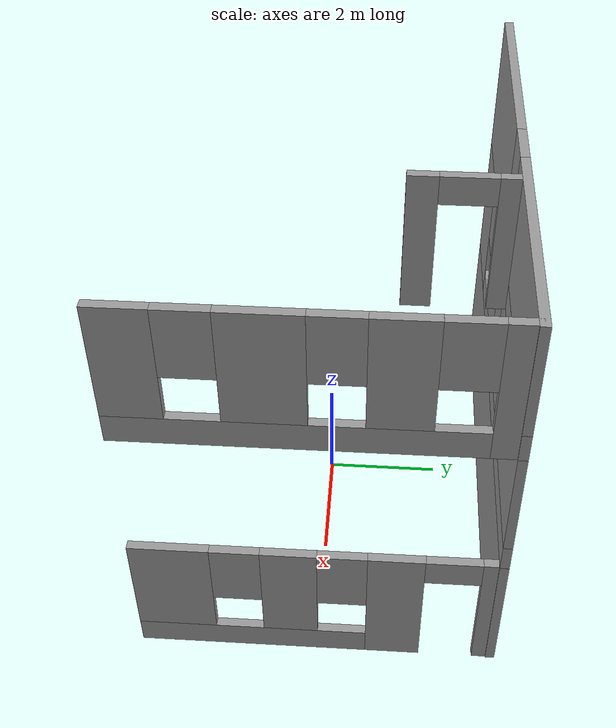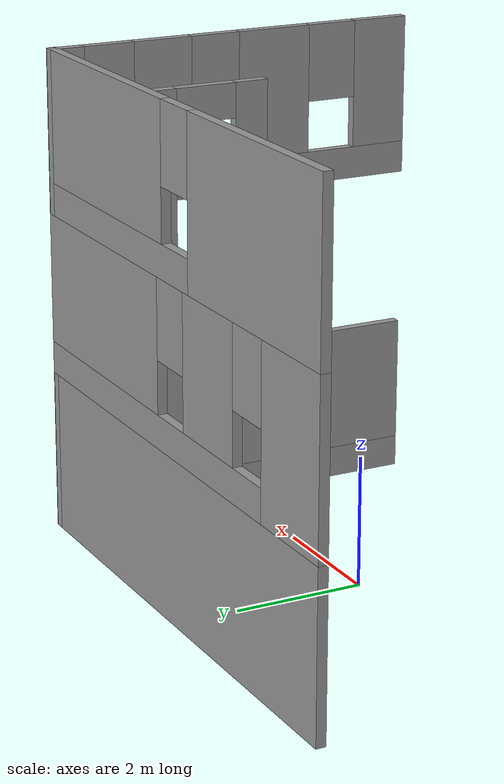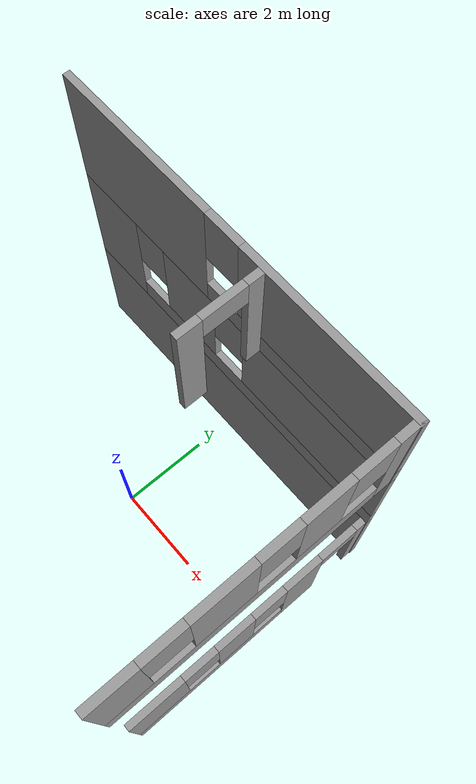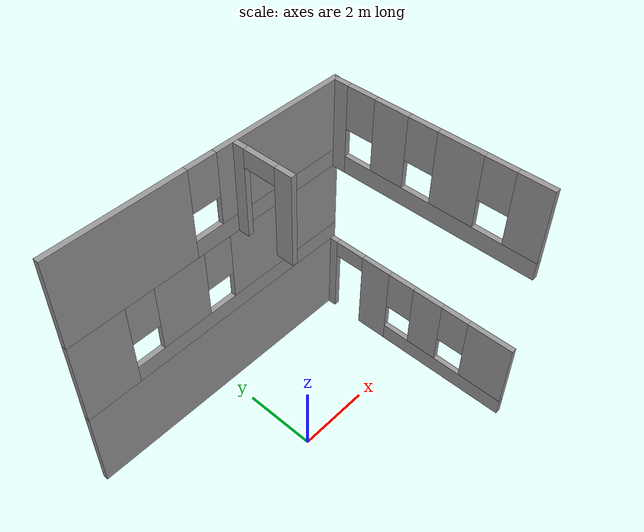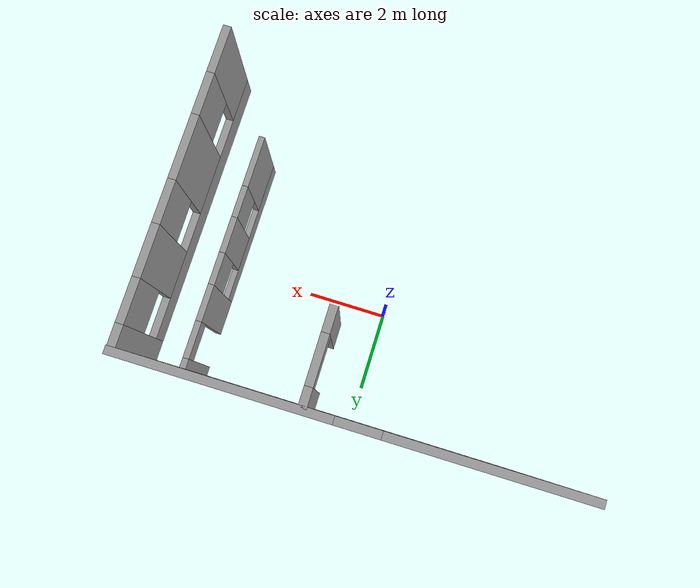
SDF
<sdf version="1.7">
 <model name="simple_building">
  <link name="Wall_18">
   <pose>0.008172 2.93646 2.5 0 -0 0</pose>
   <visual name="Wall_18_Visual_0">
    <pose>-3.37982 0 1.25 0 -0 0</pose>
    <geometry><box><size>1.51412 0.15 2.5</size></box></geometry>
    <material>
     <script><uri>file://media/materials/scripts/gazebo.material</uri><name>Gazebo/Grey</name></script>
     <ambient>1 1 1 1</ambient>
     <shader type="pixel"/>
    </material>
   </visual>
   <visual name="Wall_18_Visual_1">
    <pose>0.757062 0 0.25 0 -0 0</pose>
    <geometry><box><size>6.75963 0.15 0.5</size></box></geometry>
    <material>
     <script><uri>file://media/materials/scripts/gazebo.material</uri><name>Gazebo/Grey</name></script>
     <ambient>1 1 1 1</ambient>
     <shader type="pixel"/>
    </material>
   </visual>
   <visual name="Wall_18_Visual_2">
    <pose>-1.0897 0 1.5 0 -0 0</pose>
    <geometry><box><size>1.4661 0.15 2</size></box></geometry>
    <material>
     <script><uri>file://media/materials/scripts/gazebo.material</uri><name>Gazebo/Grey</name></script>
     <ambient>1 1 1 1</ambient>
     <shader type="pixel"/>
    </material>
   </visual>
   <visual name="Wall_18_Visual_3">
    <pose>2.29011 0 1.5 0 -0 0</pose>
    <geometry><box><size>3.69353 0.15 2</size></box></geometry>
    <material>
     <script><uri>file://media/materials/scripts/gazebo.material</uri><name>Gazebo/Grey</name></script>
     <ambient>1 1 1 1</ambient>
     <shader type="pixel"/>
    </material>
   </visual>
   <visual name="Wall_18_Visual_4">
    <pose>-2.22275 0 1.9 0 -0 0</pose>
    <geometry><box><size>0.8 0.15 1.2</size></box></geometry>
    <material>
     <script><uri>file://media/materials/scripts/gazebo.material</uri><name>Gazebo/Grey</name></script>
     <ambient>1 1 1 1</ambient>
     <shader type="pixel"/>
    </material>
   </visual>
   <visual name="Wall_18_Visual_5">
    <pose>0.043349 0 1.9 0 -0 0</pose>
    <geometry><box><size>0.8 0.15 1.2</size></box></geometry>
    <material>
     <script><uri>file://media/materials/scripts/gazebo.material</uri><name>Gazebo/Grey</name></script>
     <ambient>1 1 1 1</ambient>
     <shader type="pixel"/>
    </material>
   </visual>
   <collision name="Wall_18_Collision_0">
    <pose>-3.37982 0 1.25 0 -0 0</pose>
    <geometry><box><size>1.51412 0.15 2.5</size></box></geometry>
    <surface>
     <friction>
      <ode><mu>1</mu><mu2>1</mu2><fdir1>0 0 0</fdir1><slip1>0</slip1><slip2>0</slip2></ode>
      <torsional>
       <coefficient>1</coefficient>
       <patch_radius>0</patch_radius>
       <surface_radius>0</surface_radius>
       <use_patch_radius>1</use_patch_radius>
       <ode><slip>0</slip></ode>
      </torsional>
     </friction>
     <bounce><restitution_coefficient>0</restitution_coefficient><threshold>1e+06</threshold></bounce>
     <contact>
      <collide_without_contact>0</collide_without_contact>
      <collide_without_contact_bitmask>1</collide_without_contact_bitmask>
      <collide_bitmask>1</collide_bitmask>
      <ode>
       <soft_cfm>0</soft_cfm>
       <soft_erp>0.2</soft_erp>
       <kp>1e+13</kp>
       <kd>1</kd>
       <max_vel>0.01</max_vel>
       <min_depth>0</min_depth>
      </ode>
      <bullet>
       <split_impulse>1</split_impulse>
       <split_impulse_penetration_threshold>-0.01</split_impulse_penetration_threshold>
       <soft_cfm>0</soft_cfm>
       <soft_erp>0.2</soft_erp>
       <kp>1e+13</kp>
       <kd>1</kd>
      </bullet>
     </contact>
    </surface>
   </collision>
   <collision name="Wall_18_Collision_2">
    <pose>-1.0897 0 1.5 0 -0 0</pose>
    <geometry><box><size>1.4661 0.15 2</size></box></geometry>
    <surface>
     <friction>
      <ode><mu>1</mu><mu2>1</mu2><fdir1>0 0 0</fdir1><slip1>0</slip1><slip2>0</slip2></ode>
      <torsional>
       <coefficient>1</coefficient>
       <patch_radius>0</patch_radius>
       <surface_radius>0</surface_radius>
       <use_patch_radius>1</use_patch_radius>
       <ode><slip>0</slip></ode>
      </torsional>
     </friction>
     <bounce><restitution_coefficient>0</restitution_coefficient><threshold>1e+06</threshold></bounce>
     <contact>
      <collide_without_contact>0</collide_without_contact>
      <collide_without_contact_bitmask>1</collide_without_contact_bitmask>
      <collide_bitmask>1</collide_bitmask>
      <ode>
       <soft_cfm>0</soft_cfm>
       <soft_erp>0.2</soft_erp>
       <kp>1e+13</kp>
       <kd>1</kd>
       <max_vel>0.01</max_vel>
       <min_depth>0</min_depth>
      </ode>
      <bullet>
       <split_impulse>1</split_impulse>
       <split_impulse_penetration_threshold>-0.01</split_impulse_penetration_threshold>
       <soft_cfm>0</soft_cfm>
       <soft_erp>0.2</soft_erp>
       <kp>1e+13</kp>
       <kd>1</kd>
      </bullet>
     </contact>
    </surface>
   </collision>
   <collision name="Wall_18_Collision_1">
    <pose>0.757062 0 0.25 0 -0 0</pose>
    <geometry><box><size>6.75963 0.15 0.5</size></box></geometry>
    <surface>
     <friction>
      <ode><mu>1</mu><mu2>1</mu2><fdir1>0 0 0</fdir1><slip1>0</slip1><slip2>0</slip2></ode>
      <torsional>
       <coefficient>1</coefficient>
       <patch_radius>0</patch_radius>
       <surface_radius>0</surface_radius>
       <use_patch_radius>1</use_patch_radius>
       <ode><slip>0</slip></ode>
      </torsional>
     </friction>
     <bounce><restitution_coefficient>0</restitution_coefficient><threshold>1e+06</threshold></bounce>
     <contact>
      <collide_without_contact>0</collide_without_contact>
      <collide_without_contact_bitmask>1</collide_without_contact_bitmask>
      <collide_bitmask>1</collide_bitmask>
      <ode>
       <soft_cfm>0</soft_cfm>
       <soft_erp>0.2</soft_erp>
       <kp>1e+13</kp>
       <kd>1</kd>
       <max_vel>0.01</max_vel>
       <min_depth>0</min_depth>
      </ode>
      <bullet>
       <split_impulse>1</split_impulse>
       <split_impulse_penetration_threshold>-0.01</split_impulse_penetration_threshold>
       <soft_cfm>0</soft_cfm>
       <soft_erp>0.2</soft_erp>
       <kp>1e+13</kp>
       <kd>1</kd>
      </bullet>
     </contact>
    </surface>
   </collision>
   <collision name="Wall_18_Collision_3">
    <pose>2.29011 0 1.5 0 -0 0</pose>
    <geometry><box><size>3.69353 0.15 2</size></box></geometry>
    <surface>
     <friction>
      <ode><mu>1</mu><mu2>1</mu2><fdir1>0 0 0</fdir1><slip1>0</slip1><slip2>0</slip2></ode>
      <torsional>
       <coefficient>1</coefficient>
       <patch_radius>0</patch_radius>
       <surface_radius>0</surface_radius>
       <use_patch_radius>1</use_patch_radius>
       <ode><slip>0</slip></ode>
      </torsional>
     </friction>
     <bounce><restitution_coefficient>0</restitution_coefficient><threshold>1e+06</threshold></bounce>
     <contact>
      <collide_without_contact>0</collide_without_contact>
      <collide_without_contact_bitmask>1</collide_without_contact_bitmask>
      <collide_bitmask>1</collide_bitmask>
      <ode>
       <soft_cfm>0</soft_cfm>
       <soft_erp>0.2</soft_erp>
       <kp>1e+13</kp>
       <kd>1</kd>
       <max_vel>0.01</max_vel>
       <min_depth>0</min_depth>
      </ode>
      <bullet>
       <split_impulse>1</split_impulse>
       <split_impulse_penetration_threshold>-0.01</split_impulse_penetration_threshold>
       <soft_cfm>0</soft_cfm>
       <soft_erp>0.2</soft_erp>
       <kp>1e+13</kp>
       <kd>1</kd>
      </bullet>
     </contact>
    </surface>
   </collision>
   <collision name="Wall_18_Collision_4">
    <pose>-2.22275 0 1.9 0 -0 0</pose>
    <geometry><box><size>0.8 0.15 1.2</size></box></geometry>
    <surface>
     <friction>
      <ode><mu>1</mu><mu2>1</mu2><fdir1>0 0 0</fdir1><slip1>0</slip1><slip2>0</slip2></ode>
      <torsional>
       <coefficient>1</coefficient>
       <patch_radius>0</patch_radius>
       <surface_radius>0</surface_radius>
       <use_patch_radius>1</use_patch_radius>
       <ode><slip>0</slip></ode>
      </torsional>
     </friction>
     <bounce><restitution_coefficient>0</restitution_coefficient><threshold>1e+06</threshold></bounce>
     <contact>
      <collide_without_contact>0</collide_without_contact>
      <collide_without_contact_bitmask>1</collide_without_contact_bitmask>
      <collide_bitmask>1</collide_bitmask>
      <ode>
       <soft_cfm>0</soft_cfm>
       <soft_erp>0.2</soft_erp>
       <kp>1e+13</kp>
       <kd>1</kd>
       <max_vel>0.01</max_vel>
       <min_depth>0</min_depth>
      </ode>
      <bullet>
       <split_impulse>1</split_impulse>
       <split_impulse_penetration_threshold>-0.01</split_impulse_penetration_threshold>
       <soft_cfm>0</soft_cfm>
       <soft_erp>0.2</soft_erp>
       <kp>1e+13</kp>
       <kd>1</kd>
      </bullet>
     </contact>
    </surface>
   </collision>
   <collision name="Wall_18_Collision_5">
    <pose>0.043349 0 1.9 0 -0 0</pose>
    <geometry><box><size>0.8 0.15 1.2</size></box></geometry>
    <surface>
     <friction>
      <ode><mu>1</mu><mu2>1</mu2><fdir1>0 0 0</fdir1><slip1>0</slip1><slip2>0</slip2></ode>
      <torsional>
       <coefficient>1</coefficient>
       <patch_radius>0</patch_radius>
       <surface_radius>0</surface_radius>
       <use_patch_radius>1</use_patch_radius>
       <ode><slip>0</slip></ode>
      </torsional>
     </friction>
     <bounce><restitution_coefficient>0</restitution_coefficient><threshold>1e+06</threshold></bounce>
     <contact>
      <collide_without_contact>0</collide_without_contact>
      <collide_without_contact_bitmask>1</collide_without_contact_bitmask>
      <collide_bitmask>1</collide_bitmask>
      <ode>
       <soft_cfm>0</soft_cfm>
       <soft_erp>0.2</soft_erp>
       <kp>1e+13</kp>
       <kd>1</kd>
       <max_vel>0.01</max_vel>
       <min_depth>0</min_depth>
      </ode>
      <bullet>
       <split_impulse>1</split_impulse>
       <split_impulse_penetration_threshold>-0.01</split_impulse_penetration_threshold>
       <soft_cfm>0</soft_cfm>
       <soft_erp>0.2</soft_erp>
       <kp>1e+13</kp>
       <kd>1</kd>
      </bullet>
     </contact>
    </surface>
   </collision>
  </link>
  <link name="Wall_2">
   <pose>0.008172 2.93646 0 0 -0 0</pose>
   <visual name="Wall_2_Visual">
    <pose>0 0 1.25 0 -0 0</pose>
    <geometry><box><size>8.27376 0.15 2.5</size></box></geometry>
    <material>
     <script><uri>file://media/materials/scripts/gazebo.material</uri><name>Gazebo/Grey</name></script>
     <ambient>1 1 1 1</ambient>
     <shader type="pixel"/>
    </material>
   </visual>
   <collision name="Wall_2_Collision">
    <pose>0 0 1.25 0 -0 0</pose>
    <geometry><box><size>8.27376 0.15 2.5</size></box></geometry>
    <surface>
     <friction>
      <ode><mu>1</mu><mu2>1</mu2><fdir1>0 0 0</fdir1><slip1>0</slip1><slip2>0</slip2></ode>
      <torsional>
       <coefficient>1</coefficient>
       <patch_radius>0</patch_radius>
       <surface_radius>0</surface_radius>
       <use_patch_radius>1</use_patch_radius>
       <ode><slip>0</slip></ode>
      </torsional>
     </friction>
     <bounce><restitution_coefficient>0</restitution_coefficient><threshold>1e+06</threshold></bounce>
     <contact>
      <collide_without_contact>0</collide_without_contact>
      <collide_without_contact_bitmask>1</collide_without_contact_bitmask>
      <collide_bitmask>1</collide_bitmask>
      <ode>
       <soft_cfm>0</soft_cfm>
       <soft_erp>0.2</soft_erp>
       <kp>1e+13</kp>
       <kd>1</kd>
       <max_vel>0.01</max_vel>
       <min_depth>0</min_depth>
      </ode>
      <bullet>
       <split_impulse>1</split_impulse>
       <split_impulse_penetration_threshold>-0.01</split_impulse_penetration_threshold>
       <soft_cfm>0</soft_cfm>
       <soft_erp>0.2</soft_erp>
       <kp>1e+13</kp>
       <kd>1</kd>
      </bullet>
     </contact>
    </surface>
   </collision>
  </link>
  <link name="Wall_23">
   <pose>0.008172 2.93646 5 0 -0 0</pose>
   <visual name="Wall_23_Visual_0">
    <pose>-2.33041 0 1.25 0 -0 0</pose>
    <geometry><box><size>3.61293 0.15 2.5</size></box></geometry>
    <material>
     <script><uri>file://media/materials/scripts/gazebo.material</uri><name>Gazebo/Grey</name></script>
     <ambient>1 1 1 1</ambient>
     <shader type="pixel"/>
    </material>
   </visual>
   <visual name="Wall_23_Visual_1">
    <pose>1.80647 0 0.25 0 -0 0</pose>
    <geometry><box><size>4.66083 0.15 0.5</size></box></geometry>
    <material>
     <script><uri>file://media/materials/scripts/gazebo.material</uri><name>Gazebo/Grey</name></script>
     <ambient>1 1 1 1</ambient>
     <shader type="pixel"/>
    </material>
   </visual>
   <visual name="Wall_23_Visual_2">
    <pose>2.20647 0 1.5 0 -0 0</pose>
    <geometry><box><size>3.86083 0.15 2</size></box></geometry>
    <material>
     <script><uri>file://media/materials/scripts/gazebo.material</uri><name>Gazebo/Grey</name></script>
     <ambient>1 1 1 1</ambient>
     <shader type="pixel"/>
    </material>
   </visual>
   <visual name="Wall_23_Visual_3">
    <pose>-0.123947 0 1.9 0 -0 0</pose>
    <geometry><box><size>0.8 0.15 1.2</size></box></geometry>
    <material>
     <script><uri>file://media/materials/scripts/gazebo.material</uri><name>Gazebo/Grey</name></script>
     <ambient>1 1 1 1</ambient>
     <shader type="pixel"/>
    </material>
   </visual>
   <collision name="Wall_23_Collision_0">
    <pose>-2.33041 0 1.25 0 -0 0</pose>
    <geometry><box><size>3.61293 0.15 2.5</size></box></geometry>
    <surface>
     <friction>
      <ode><mu>1</mu><mu2>1</mu2><fdir1>0 0 0</fdir1><slip1>0</slip1><slip2>0</slip2></ode>
      <torsional>
       <coefficient>1</coefficient>
       <patch_radius>0</patch_radius>
       <surface_radius>0</surface_radius>
       <use_patch_radius>1</use_patch_radius>
       <ode><slip>0</slip></ode>
      </torsional>
     </friction>
     <bounce><restitution_coefficient>0</restitution_coefficient><threshold>1e+06</threshold></bounce>
     <contact>
      <collide_without_contact>0</collide_without_contact>
      <collide_without_contact_bitmask>1</collide_without_contact_bitmask>
      <collide_bitmask>1</collide_bitmask>
      <ode>
       <soft_cfm>0</soft_cfm>
       <soft_erp>0.2</soft_erp>
       <kp>1e+13</kp>
       <kd>1</kd>
       <max_vel>0.01</max_vel>
       <min_depth>0</min_depth>
      </ode>
      <bullet>
       <split_impulse>1</split_impulse>
       <split_impulse_penetration_threshold>-0.01</split_impulse_penetration_threshold>
       <soft_cfm>0</soft_cfm>
       <soft_erp>0.2</soft_erp>
       <kp>1e+13</kp>
       <kd>1</kd>
      </bullet>
     </contact>
    </surface>
   </collision>
   <collision name="Wall_23_Collision_1">
    <pose>1.80647 0 0.25 0 -0 0</pose>
    <geometry><box><size>4.66083 0.15 0.5</size></box></geometry>
    <surface>
     <friction>
      <ode><mu>1</mu><mu2>1</mu2><fdir1>0 0 0</fdir1><slip1>0</slip1><slip2>0</slip2></ode>
      <torsional>
       <coefficient>1</coefficient>
       <patch_radius>0</patch_radius>
       <surface_radius>0</surface_radius>
       <use_patch_radius>1</use_patch_radius>
       <ode><slip>0</slip></ode>
      </torsional>
     </friction>
     <bounce><restitution_coefficient>0</restitution_coefficient><threshold>1e+06</threshold></bounce>
     <contact>
      <collide_without_contact>0</collide_without_contact>
      <collide_without_contact_bitmask>1</collide_without_contact_bitmask>
      <collide_bitmask>1</collide_bitmask>
      <ode>
       <soft_cfm>0</soft_cfm>
       <soft_erp>0.2</soft_erp>
       <kp>1e+13</kp>
       <kd>1</kd>
       <max_vel>0.01</max_vel>
       <min_depth>0</min_depth>
      </ode>
      <bullet>
       <split_impulse>1</split_impulse>
       <split_impulse_penetration_threshold>-0.01</split_impulse_penetration_threshold>
       <soft_cfm>0</soft_cfm>
       <soft_erp>0.2</soft_erp>
       <kp>1e+13</kp>
       <kd>1</kd>
      </bullet>
     </contact>
    </surface>
   </collision>
   <collision name="Wall_23_Collision_2">
    <pose>2.20647 0 1.5 0 -0 0</pose>
    <geometry><box><size>3.86083 0.15 2</size></box></geometry>
    <surface>
     <friction>
      <ode><mu>1</mu><mu2>1</mu2><fdir1>0 0 0</fdir1><slip1>0</slip1><slip2>0</slip2></ode>
      <torsional>
       <coefficient>1</coefficient>
       <patch_radius>0</patch_radius>
       <surface_radius>0</surface_radius>
       <use_patch_radius>1</use_patch_radius>
       <ode><slip>0</slip></ode>
      </torsional>
     </friction>
     <bounce><restitution_coefficient>0</restitution_coefficient><threshold>1e+06</threshold></bounce>
     <contact>
      <collide_without_contact>0</collide_without_contact>
      <collide_without_contact_bitmask>1</collide_without_contact_bitmask>
      <collide_bitmask>1</collide_bitmask>
      <ode>
       <soft_cfm>0</soft_cfm>
       <soft_erp>0.2</soft_erp>
       <kp>1e+13</kp>
       <kd>1</kd>
       <max_vel>0.01</max_vel>
       <min_depth>0</min_depth>
      </ode>
      <bullet>
       <split_impulse>1</split_impulse>
       <split_impulse_penetration_threshold>-0.01</split_impulse_penetration_threshold>
       <soft_cfm>0</soft_cfm>
       <soft_erp>0.2</soft_erp>
       <kp>1e+13</kp>
       <kd>1</kd>
      </bullet>
     </contact>
    </surface>
   </collision>
   <collision name="Wall_23_Collision_3">
    <pose>-0.123947 0 1.9 0 -0 0</pose>
    <geometry><box><size>0.8 0.15 1.2</size></box></geometry>
    <surface>
     <friction>
      <ode><mu>1</mu><mu2>1</mu2><fdir1>0 0 0</fdir1><slip1>0</slip1><slip2>0</slip2></ode>
      <torsional>
       <coefficient>1</coefficient>
       <patch_radius>0</patch_radius>
       <surface_radius>0</surface_radius>
       <use_patch_radius>1</use_patch_radius>
       <ode><slip>0</slip></ode>
      </torsional>
     </friction>
     <bounce><restitution_coefficient>0</restitution_coefficient><threshold>1e+06</threshold></bounce>
     <contact>
      <collide_without_contact>0</collide_without_contact>
      <collide_without_contact_bitmask>1</collide_without_contact_bitmask>
      <collide_bitmask>1</collide_bitmask>
      <ode>
       <soft_cfm>0</soft_cfm>
       <soft_erp>0.2</soft_erp>
       <kp>1e+13</kp>
       <kd>1</kd>
       <max_vel>0.01</max_vel>
       <min_depth>0</min_depth>
      </ode>
      <bullet>
       <split_impulse>1</split_impulse>
       <split_impulse_penetration_threshold>-0.01</split_impulse_penetration_threshold>
       <soft_cfm>0</soft_cfm>
       <soft_erp>0.2</soft_erp>
       <kp>1e+13</kp>
       <kd>1</kd>
      </bullet>
     </contact>
    </surface>
   </collision>
  </link>
  <link name="Wall_24">
   <pose>4.05484 0.011464 5 0 0 -1.5708</pose>
   <visual name="Wall_24_Visual_0">
    <pose>-2.73149 0 1.25 0 -0 0</pose>
    <geometry><box><size>0.537024 0.15 2.5</size></box></geometry>
    <material>
     <script><uri>file://media/materials/scripts/gazebo.material</uri><name>Gazebo/Grey</name></script>
     <ambient>1 1 1 1</ambient>
     <shader type="pixel"/>
    </material>
   </visual>
   <visual name="Wall_24_Visual_1">
    <pose>0.268512 0 0.25 0 -0 0</pose>
    <geometry><box><size>5.46298 0.15 0.5</size></box></geometry>
    <material>
     <script><uri>file://media/materials/scripts/gazebo.material</uri><name>Gazebo/Grey</name></script>
     <ambient>1 1 1 1</ambient>
     <shader type="pixel"/>
    </material>
   </visual>
   <visual name="Wall_24_Visual_2">
    <pose>-1.18847 0 1.5 0 -0 0</pose>
    <geometry><box><size>0.949006 0.15 2</size></box></geometry>
    <material>
     <script><uri>file://media/materials/scripts/gazebo.material</uri><name>Gazebo/Grey</name></script>
     <ambient>1 1 1 1</ambient>
     <shader type="pixel"/>
    </material>
   </visual>
   <visual name="Wall_24_Visual_3">
    <pose>0.689808 0 1.5 0 -0 0</pose>
    <geometry><box><size>1.20755 0.15 2</size></box></geometry>
    <material>
     <script><uri>file://media/materials/scripts/gazebo.material</uri><name>Gazebo/Grey</name></script>
     <ambient>1 1 1 1</ambient>
     <shader type="pixel"/>
    </material>
   </visual>
   <visual name="Wall_24_Visual_4">
    <pose>2.54679 0 1.5 0 -0 0</pose>
    <geometry><box><size>0.906414 0.15 2</size></box></geometry>
    <material>
     <script><uri>file://media/materials/scripts/gazebo.material</uri><name>Gazebo/Grey</name></script>
     <ambient>1 1 1 1</ambient>
     <shader type="pixel"/>
    </material>
   </visual>
   <visual name="Wall_24_Visual_5">
    <pose>-2.06298 0 1.9 0 -0 0</pose>
    <geometry><box><size>0.8 0.15 1.2</size></box></geometry>
    <material>
     <script><uri>file://media/materials/scripts/gazebo.material</uri><name>Gazebo/Grey</name></script>
     <ambient>1 1 1 1</ambient>
     <shader type="pixel"/>
    </material>
   </visual>
   <visual name="Wall_24_Visual_6">
    <pose>-0.313969 0 1.9 0 -0 0</pose>
    <geometry><box><size>0.8 0.15 1.2</size></box></geometry>
    <material>
     <script><uri>file://media/materials/scripts/gazebo.material</uri><name>Gazebo/Grey</name></script>
     <ambient>1 1 1 1</ambient>
     <shader type="pixel"/>
    </material>
   </visual>
   <visual name="Wall_24_Visual_7">
    <pose>1.69359 0 1.9 0 -0 0</pose>
    <geometry><box><size>0.8 0.15 1.2</size></box></geometry>
    <material>
     <script><uri>file://media/materials/scripts/gazebo.material</uri><name>Gazebo/Grey</name></script>
     <ambient>1 1 1 1</ambient>
     <shader type="pixel"/>
    </material>
   </visual>
   <collision name="Wall_24_Collision_0">
    <pose>-2.73149 0 1.25 0 -0 0</pose>
    <geometry><box><size>0.537024 0.15 2.5</size></box></geometry>
    <surface>
     <friction>
      <ode><mu>1</mu><mu2>1</mu2><fdir1>0 0 0</fdir1><slip1>0</slip1><slip2>0</slip2></ode>
      <torsional>
       <coefficient>1</coefficient>
       <patch_radius>0</patch_radius>
       <surface_radius>0</surface_radius>
       <use_patch_radius>1</use_patch_radius>
       <ode><slip>0</slip></ode>
      </torsional>
     </friction>
     <bounce><restitution_coefficient>0</restitution_coefficient><threshold>1e+06</threshold></bounce>
     <contact>
      <collide_without_contact>0</collide_without_contact>
      <collide_without_contact_bitmask>1</collide_without_contact_bitmask>
      <collide_bitmask>1</collide_bitmask>
      <ode>
       <soft_cfm>0</soft_cfm>
       <soft_erp>0.2</soft_erp>
       <kp>1e+13</kp>
       <kd>1</kd>
       <max_vel>0.01</max_vel>
       <min_depth>0</min_depth>
      </ode>
      <bullet>
       <split_impulse>1</split_impulse>
       <split_impulse_penetration_threshold>-0.01</split_impulse_penetration_threshold>
       <soft_cfm>0</soft_cfm>
       <soft_erp>0.2</soft_erp>
       <kp>1e+13</kp>
       <kd>1</kd>
      </bullet>
     </contact>
    </surface>
   </collision>
   <collision name="Wall_24_Collision_1">
    <pose>0.268512 0 0.25 0 -0 0</pose>
    <geometry><box><size>5.46298 0.15 0.5</size></box></geometry>
    <surface>
     <friction>
      <ode><mu>1</mu><mu2>1</mu2><fdir1>0 0 0</fdir1><slip1>0</slip1><slip2>0</slip2></ode>
      <torsional>
       <coefficient>1</coefficient>
       <patch_radius>0</patch_radius>
       <surface_radius>0</surface_radius>
       <use_patch_radius>1</use_patch_radius>
       <ode><slip>0</slip></ode>
      </torsional>
     </friction>
     <bounce><restitution_coefficient>0</restitution_coefficient><threshold>1e+06</threshold></bounce>
     <contact>
      <collide_without_contact>0</collide_without_contact>
      <collide_without_contact_bitmask>1</collide_without_contact_bitmask>
      <collide_bitmask>1</collide_bitmask>
      <ode>
       <soft_cfm>0</soft_cfm>
       <soft_erp>0.2</soft_erp>
       <kp>1e+13</kp>
       <kd>1</kd>
       <max_vel>0.01</max_vel>
       <min_depth>0</min_depth>
      </ode>
      <bullet>
       <split_impulse>1</split_impulse>
       <split_impulse_penetration_threshold>-0.01</split_impulse_penetration_threshold>
       <soft_cfm>0</soft_cfm>
       <soft_erp>0.2</soft_erp>
       <kp>1e+13</kp>
       <kd>1</kd>
      </bullet>
     </contact>
    </surface>
   </collision>
   <collision name="Wall_24_Collision_2">
    <pose>-1.18847 0 1.5 0 -0 0</pose>
    <geometry><box><size>0.949006 0.15 2</size></box></geometry>
    <surface>
     <friction>
      <ode><mu>1</mu><mu2>1</mu2><fdir1>0 0 0</fdir1><slip1>0</slip1><slip2>0</slip2></ode>
      <torsional>
       <coefficient>1</coefficient>
       <patch_radius>0</patch_radius>
       <surface_radius>0</surface_radius>
       <use_patch_radius>1</use_patch_radius>
       <ode><slip>0</slip></ode>
      </torsional>
     </friction>
     <bounce><restitution_coefficient>0</restitution_coefficient><threshold>1e+06</threshold></bounce>
     <contact>
      <collide_without_contact>0</collide_without_contact>
      <collide_without_contact_bitmask>1</collide_without_contact_bitmask>
      <collide_bitmask>1</collide_bitmask>
      <ode>
       <soft_cfm>0</soft_cfm>
       <soft_erp>0.2</soft_erp>
       <kp>1e+13</kp>
       <kd>1</kd>
       <max_vel>0.01</max_vel>
       <min_depth>0</min_depth>
      </ode>
      <bullet>
       <split_impulse>1</split_impulse>
       <split_impulse_penetration_threshold>-0.01</split_impulse_penetration_threshold>
       <soft_cfm>0</soft_cfm>
       <soft_erp>0.2</soft_erp>
       <kp>1e+13</kp>
       <kd>1</kd>
      </bullet>
     </contact>
    </surface>
   </collision>
   <collision name="Wall_24_Collision_3">
    <pose>0.689808 0 1.5 0 -0 0</pose>
    <geometry><box><size>1.20755 0.15 2</size></box></geometry>
    <surface>
     <friction>
      <ode><mu>1</mu><mu2>1</mu2><fdir1>0 0 0</fdir1><slip1>0</slip1><slip2>0</slip2></ode>
      <torsional>
       <coefficient>1</coefficient>
       <patch_radius>0</patch_radius>
       <surface_radius>0</surface_radius>
       <use_patch_radius>1</use_patch_radius>
       <ode><slip>0</slip></ode>
      </torsional>
     </friction>
     <bounce><restitution_coefficient>0</restitution_coefficient><threshold>1e+06</threshold></bounce>
     <contact>
      <collide_without_contact>0</collide_without_contact>
      <collide_without_contact_bitmask>1</collide_without_contact_bitmask>
      <collide_bitmask>1</collide_bitmask>
      <ode>
       <soft_cfm>0</soft_cfm>
       <soft_erp>0.2</soft_erp>
       <kp>1e+13</kp>
       <kd>1</kd>
       <max_vel>0.01</max_vel>
       <min_depth>0</min_depth>
      </ode>
      <bullet>
       <split_impulse>1</split_impulse>
       <split_impulse_penetration_threshold>-0.01</split_impulse_penetration_threshold>
       <soft_cfm>0</soft_cfm>
       <soft_erp>0.2</soft_erp>
       <kp>1e+13</kp>
       <kd>1</kd>
      </bullet>
     </contact>
    </surface>
   </collision>
   <collision name="Wall_24_Collision_4">
    <pose>2.54679 0 1.5 0 -0 0</pose>
    <geometry><box><size>0.906414 0.15 2</size></box></geometry>
    <surface>
     <friction>
      <ode><mu>1</mu><mu2>1</mu2><fdir1>0 0 0</fdir1><slip1>0</slip1><slip2>0</slip2></ode>
      <torsional>
       <coefficient>1</coefficient>
       <patch_radius>0</patch_radius>
       <surface_radius>0</surface_radius>
       <use_patch_radius>1</use_patch_radius>
       <ode><slip>0</slip></ode>
      </torsional>
     </friction>
     <bounce><restitution_coefficient>0</restitution_coefficient><threshold>1e+06</threshold></bounce>
     <contact>
      <collide_without_contact>0</collide_without_contact>
      <collide_without_contact_bitmask>1</collide_without_contact_bitmask>
      <collide_bitmask>1</collide_bitmask>
      <ode>
       <soft_cfm>0</soft_cfm>
       <soft_erp>0.2</soft_erp>
       <kp>1e+13</kp>
       <kd>1</kd>
       <max_vel>0.01</max_vel>
       <min_depth>0</min_depth>
      </ode>
      <bullet>
       <split_impulse>1</split_impulse>
       <split_impulse_penetration_threshold>-0.01</split_impulse_penetration_threshold>
       <soft_cfm>0</soft_cfm>
       <soft_erp>0.2</soft_erp>
       <kp>1e+13</kp>
       <kd>1</kd>
      </bullet>
     </contact>
    </surface>
   </collision>
   <collision name="Wall_24_Collision_5">
    <pose>-2.06298 0 1.9 0 -0 0</pose>
    <geometry><box><size>0.8 0.15 1.2</size></box></geometry>
    <surface>
     <friction>
      <ode><mu>1</mu><mu2>1</mu2><fdir1>0 0 0</fdir1><slip1>0</slip1><slip2>0</slip2></ode>
      <torsional>
       <coefficient>1</coefficient>
       <patch_radius>0</patch_radius>
       <surface_radius>0</surface_radius>
       <use_patch_radius>1</use_patch_radius>
       <ode><slip>0</slip></ode>
      </torsional>
     </friction>
     <bounce><restitution_coefficient>0</restitution_coefficient><threshold>1e+06</threshold></bounce>
     <contact>
      <collide_without_contact>0</collide_without_contact>
      <collide_without_contact_bitmask>1</collide_without_contact_bitmask>
      <collide_bitmask>1</collide_bitmask>
      <ode>
       <soft_cfm>0</soft_cfm>
       <soft_erp>0.2</soft_erp>
       <kp>1e+13</kp>
       <kd>1</kd>
       <max_vel>0.01</max_vel>
       <min_depth>0</min_depth>
      </ode>
      <bullet>
       <split_impulse>1</split_impulse>
       <split_impulse_penetration_threshold>-0.01</split_impulse_penetration_threshold>
       <soft_cfm>0</soft_cfm>
       <soft_erp>0.2</soft_erp>
       <kp>1e+13</kp>
       <kd>1</kd>
      </bullet>
     </contact>
    </surface>
   </collision>
   <collision name="Wall_24_Collision_6">
    <pose>-0.313969 0 1.9 0 -0 0</pose>
    <geometry><box><size>0.8 0.15 1.2</size></box></geometry>
    <surface>
     <friction>
      <ode><mu>1</mu><mu2>1</mu2><fdir1>0 0 0</fdir1><slip1>0</slip1><slip2>0</slip2></ode>
      <torsional>
       <coefficient>1</coefficient>
       <patch_radius>0</patch_radius>
       <surface_radius>0</surface_radius>
       <use_patch_radius>1</use_patch_radius>
       <ode><slip>0</slip></ode>
      </torsional>
     </friction>
     <bounce><restitution_coefficient>0</restitution_coefficient><threshold>1e+06</threshold></bounce>
     <contact>
      <collide_without_contact>0</collide_without_contact>
      <collide_without_contact_bitmask>1</collide_without_contact_bitmask>
      <collide_bitmask>1</collide_bitmask>
      <ode>
       <soft_cfm>0</soft_cfm>
       <soft_erp>0.2</soft_erp>
       <kp>1e+13</kp>
       <kd>1</kd>
       <max_vel>0.01</max_vel>
       <min_depth>0</min_depth>
      </ode>
      <bullet>
       <split_impulse>1</split_impulse>
       <split_impulse_penetration_threshold>-0.01</split_impulse_penetration_threshold>
       <soft_cfm>0</soft_cfm>
       <soft_erp>0.2</soft_erp>
       <kp>1e+13</kp>
       <kd>1</kd>
      </bullet>
     </contact>
    </surface>
   </collision>
   <collision name="Wall_24_Collision_7">
    <pose>1.69359 0 1.9 0 -0 0</pose>
    <geometry><box><size>0.8 0.15 1.2</size></box></geometry>
    <surface>
     <friction>
      <ode><mu>1</mu><mu2>1</mu2><fdir1>0 0 0</fdir1><slip1>0</slip1><slip2>0</slip2></ode>
      <torsional>
       <coefficient>1</coefficient>
       <patch_radius>0</patch_radius>
       <surface_radius>0</surface_radius>
       <use_patch_radius>1</use_patch_radius>
       <ode><slip>0</slip></ode>
      </torsional>
     </friction>
     <bounce><restitution_coefficient>0</restitution_coefficient><threshold>1e+06</threshold></bounce>
     <contact>
      <collide_without_contact>0</collide_without_contact>
      <collide_without_contact_bitmask>1</collide_without_contact_bitmask>
      <collide_bitmask>1</collide_bitmask>
      <ode>
       <soft_cfm>0</soft_cfm>
       <soft_erp>0.2</soft_erp>
       <kp>1e+13</kp>
       <kd>1</kd>
       <max_vel>0.01</max_vel>
       <min_depth>0</min_depth>
      </ode>
      <bullet>
       <split_impulse>1</split_impulse>
       <split_impulse_penetration_threshold>-0.01</split_impulse_penetration_threshold>
       <soft_cfm>0</soft_cfm>
       <soft_erp>0.2</soft_erp>
       <kp>1e+13</kp>
       <kd>1</kd>
      </bullet>
     </contact>
    </surface>
   </collision>
  </link>
  <link name="Wall_27">
   <pose>0.819284 2.03127 5 0 -0 1.5708</pose>
   <visual name="Wall_27_Visual_0">
    <pose>-0.630644 0 1.25 0 -0 0</pose>
    <geometry><box><size>0.488713 0.15 2.5</size></box></geometry>
    <material>
     <script><uri>file://media/materials/scripts/gazebo.material</uri><name>Gazebo/Grey</name></script>
     <ambient>1 1 1 1</ambient>
     <shader type="pixel"/>
    </material>
   </visual>
   <visual name="Wall_27_Visual_1">
    <pose>0.694356 0 1.25 0 -0 0</pose>
    <geometry><box><size>0.361287 0.15 2.5</size></box></geometry>
    <material>
     <script><uri>file://media/materials/scripts/gazebo.material</uri><name>Gazebo/Grey</name></script>
     <ambient>1 1 1 1</ambient>
     <shader type="pixel"/>
    </material>
   </visual>
   <visual name="Wall_27_Visual_2">
    <pose>0.063713 0 2.25 0 -0 0</pose>
    <geometry><box><size>0.9 0.15 0.5</size></box></geometry>
    <material>
     <script><uri>file://media/materials/scripts/gazebo.material</uri><name>Gazebo/Grey</name></script>
     <ambient>1 1 1 1</ambient>
     <shader type="pixel"/>
    </material>
   </visual>
   <collision name="Wall_27_Collision_0">
    <pose>-0.630644 0 1.25 0 -0 0</pose>
    <geometry><box><size>0.488713 0.15 2.5</size></box></geometry>
    <surface>
     <friction>
      <ode><mu>1</mu><mu2>1</mu2><fdir1>0 0 0</fdir1><slip1>0</slip1><slip2>0</slip2></ode>
      <torsional>
       <coefficient>1</coefficient>
       <patch_radius>0</patch_radius>
       <surface_radius>0</surface_radius>
       <use_patch_radius>1</use_patch_radius>
       <ode><slip>0</slip></ode>
      </torsional>
     </friction>
     <bounce><restitution_coefficient>0</restitution_coefficient><threshold>1e+06</threshold></bounce>
     <contact>
      <collide_without_contact>0</collide_without_contact>
      <collide_without_contact_bitmask>1</collide_without_contact_bitmask>
      <collide_bitmask>1</collide_bitmask>
      <ode>
       <soft_cfm>0</soft_cfm>
       <soft_erp>0.2</soft_erp>
       <kp>1e+13</kp>
       <kd>1</kd>
       <max_vel>0.01</max_vel>
       <min_depth>0</min_depth>
      </ode>
      <bullet>
       <split_impulse>1</split_impulse>
       <split_impulse_penetration_threshold>-0.01</split_impulse_penetration_threshold>
       <soft_cfm>0</soft_cfm>
       <soft_erp>0.2</soft_erp>
       <kp>1e+13</kp>
       <kd>1</kd>
      </bullet>
     </contact>
    </surface>
   </collision>
   <collision name="Wall_27_Collision_1">
    <pose>0.694356 0 1.25 0 -0 0</pose>
    <geometry><box><size>0.361287 0.15 2.5</size></box></geometry>
    <surface>
     <friction>
      <ode><mu>1</mu><mu2>1</mu2><fdir1>0 0 0</fdir1><slip1>0</slip1><slip2>0</slip2></ode>
      <torsional>
       <coefficient>1</coefficient>
       <patch_radius>0</patch_radius>
       <surface_radius>0</surface_radius>
       <use_patch_radius>1</use_patch_radius>
       <ode><slip>0</slip></ode>
      </torsional>
     </friction>
     <bounce><restitution_coefficient>0</restitution_coefficient><threshold>1e+06</threshold></bounce>
     <contact>
      <collide_without_contact>0</collide_without_contact>
      <collide_without_contact_bitmask>1</collide_without_contact_bitmask>
      <collide_bitmask>1</collide_bitmask>
      <ode>
       <soft_cfm>0</soft_cfm>
       <soft_erp>0.2</soft_erp>
       <kp>1e+13</kp>
       <kd>1</kd>
       <max_vel>0.01</max_vel>
       <min_depth>0</min_depth>
      </ode>
      <bullet>
       <split_impulse>1</split_impulse>
       <split_impulse_penetration_threshold>-0.01</split_impulse_penetration_threshold>
       <soft_cfm>0</soft_cfm>
       <soft_erp>0.2</soft_erp>
       <kp>1e+13</kp>
       <kd>1</kd>
      </bullet>
     </contact>
    </surface>
   </collision>
   <collision name="Wall_27_Collision_2">
    <pose>0.063713 0 2.25 0 -0 0</pose>
    <geometry><box><size>0.9 0.15 0.5</size></box></geometry>
    <surface>
     <friction>
      <ode><mu>1</mu><mu2>1</mu2><fdir1>0 0 0</fdir1><slip1>0</slip1><slip2>0</slip2></ode>
      <torsional>
       <coefficient>1</coefficient>
       <patch_radius>0</patch_radius>
       <surface_radius>0</surface_radius>
       <use_patch_radius>1</use_patch_radius>
       <ode><slip>0</slip></ode>
      </torsional>
     </friction>
     <bounce><restitution_coefficient>0</restitution_coefficient><threshold>1e+06</threshold></bounce>
     <contact>
      <collide_without_contact>0</collide_without_contact>
      <collide_without_contact_bitmask>1</collide_without_contact_bitmask>
      <collide_bitmask>1</collide_bitmask>
      <ode>
       <soft_cfm>0</soft_cfm>
       <soft_erp>0.2</soft_erp>
       <kp>1e+13</kp>
       <kd>1</kd>
       <max_vel>0.01</max_vel>
       <min_depth>0</min_depth>
      </ode>
      <bullet>
       <split_impulse>1</split_impulse>
       <split_impulse_penetration_threshold>-0.01</split_impulse_penetration_threshold>
       <soft_cfm>0</soft_cfm>
       <soft_erp>0.2</soft_erp>
       <kp>1e+13</kp>
       <kd>1</kd>
      </bullet>
     </contact>
    </surface>
   </collision>
  </link>
  <link name="Wall_3">
   <pose>4.05484 0.011464 0 0 0 -1.5708</pose>
   <visual name="Wall_3_Visual_0">
    <pose>-2.80638 0 1.25 0 -0 0</pose>
    <geometry><box><size>0.387247 0.15 2.5</size></box></geometry>
    <material>
     <script><uri>file://media/materials/scripts/gazebo.material</uri><name>Gazebo/Grey</name></script>
     <ambient>1 1 1 1</ambient>
     <shader type="pixel"/>
    </material>
   </visual>
   <visual name="Wall_3_Visual_1">
    <pose>-1.25899 0 1.25 0 -0 0</pose>
    <geometry><box><size>0.907531 0.15 2.5</size></box></geometry>
    <material>
     <script><uri>file://media/materials/scripts/gazebo.material</uri><name>Gazebo/Grey</name></script>
     <ambient>1 1 1 1</ambient>
     <shader type="pixel"/>
    </material>
   </visual>
   <visual name="Wall_3_Visual_2">
    <pose>1.09739 0 0.25 0 -0 0</pose>
    <geometry><box><size>3.80522 0.15 0.5</size></box></geometry>
    <material>
     <script><uri>file://media/materials/scripts/gazebo.material</uri><name>Gazebo/Grey</name></script>
     <ambient>1 1 1 1</ambient>
     <shader type="pixel"/>
    </material>
   </visual>
   <visual name="Wall_3_Visual_3">
    <pose>0.446468 0 1.5 0 -0 0</pose>
    <geometry><box><size>0.90338 0.15 2</size></box></geometry>
    <material>
     <script><uri>file://media/materials/scripts/gazebo.material</uri><name>Gazebo/Grey</name></script>
     <ambient>1 1 1 1</ambient>
     <shader type="pixel"/>
    </material>
   </visual>
   <visual name="Wall_3_Visual_4">
    <pose>2.34908 0 1.5 0 -0 0</pose>
    <geometry><box><size>1.30184 0.15 2</size></box></geometry>
    <material>
     <script><uri>file://media/materials/scripts/gazebo.material</uri><name>Gazebo/Grey</name></script>
     <ambient>1 1 1 1</ambient>
     <shader type="pixel"/>
    </material>
   </visual>
   <visual name="Wall_3_Visual_5">
    <pose>-0.405222 0 1.9 0 -0 0</pose>
    <geometry><box><size>0.8 0.15 1.2</size></box></geometry>
    <material>
     <script><uri>file://media/materials/scripts/gazebo.material</uri><name>Gazebo/Grey</name></script>
     <ambient>1 1 1 1</ambient>
     <shader type="pixel"/>
    </material>
   </visual>
   <visual name="Wall_3_Visual_6">
    <pose>1.29816 0 1.9 0 -0 0</pose>
    <geometry><box><size>0.8 0.15 1.2</size></box></geometry>
    <material>
     <script><uri>file://media/materials/scripts/gazebo.material</uri><name>Gazebo/Grey</name></script>
     <ambient>1 1 1 1</ambient>
     <shader type="pixel"/>
    </material>
   </visual>
   <visual name="Wall_3_Visual_7">
    <pose>-2.16275 0 2.25 0 -0 0</pose>
    <geometry><box><size>0.9 0.15 0.5</size></box></geometry>
    <material>
     <script><uri>file://media/materials/scripts/gazebo.material</uri><name>Gazebo/Grey</name></script>
     <ambient>1 1 1 1</ambient>
     <shader type="pixel"/>
    </material>
   </visual>
   <collision name="Wall_3_Collision_0">
    <pose>-2.80638 0 1.25 0 -0 0</pose>
    <geometry><box><size>0.387247 0.15 2.5</size></box></geometry>
    <surface>
     <friction>
      <ode><mu>1</mu><mu2>1</mu2><fdir1>0 0 0</fdir1><slip1>0</slip1><slip2>0</slip2></ode>
      <torsional>
       <coefficient>1</coefficient>
       <patch_radius>0</patch_radius>
       <surface_radius>0</surface_radius>
       <use_patch_radius>1</use_patch_radius>
       <ode><slip>0</slip></ode>
      </torsional>
     </friction>
     <bounce><restitution_coefficient>0</restitution_coefficient><threshold>1e+06</threshold></bounce>
     <contact>
      <collide_without_contact>0</collide_without_contact>
      <collide_without_contact_bitmask>1</collide_without_contact_bitmask>
      <collide_bitmask>1</collide_bitmask>
      <ode>
       <soft_cfm>0</soft_cfm>
       <soft_erp>0.2</soft_erp>
       <kp>1e+13</kp>
       <kd>1</kd>
       <max_vel>0.01</max_vel>
       <min_depth>0</min_depth>
      </ode>
      <bullet>
       <split_impulse>1</split_impulse>
       <split_impulse_penetration_threshold>-0.01</split_impulse_penetration_threshold>
       <soft_cfm>0</soft_cfm>
       <soft_erp>0.2</soft_erp>
       <kp>1e+13</kp>
       <kd>1</kd>
      </bullet>
     </contact>
    </surface>
   </collision>
   <collision name="Wall_3_Collision_1">
    <pose>-1.25899 0 1.25 0 -0 0</pose>
    <geometry><box><size>0.907531 0.15 2.5</size></box></geometry>
    <surface>
     <friction>
      <ode><mu>1</mu><mu2>1</mu2><fdir1>0 0 0</fdir1><slip1>0</slip1><slip2>0</slip2></ode>
      <torsional>
       <coefficient>1</coefficient>
       <patch_radius>0</patch_radius>
       <surface_radius>0</surface_radius>
       <use_patch_radius>1</use_patch_radius>
       <ode><slip>0</slip></ode>
      </torsional>
     </friction>
     <bounce><restitution_coefficient>0</restitution_coefficient><threshold>1e+06</threshold></bounce>
     <contact>
      <collide_without_contact>0</collide_without_contact>
      <collide_without_contact_bitmask>1</collide_without_contact_bitmask>
      <collide_bitmask>1</collide_bitmask>
      <ode>
       <soft_cfm>0</soft_cfm>
       <soft_erp>0.2</soft_erp>
       <kp>1e+13</kp>
       <kd>1</kd>
       <max_vel>0.01</max_vel>
       <min_depth>0</min_depth>
      </ode>
      <bullet>
       <split_impulse>1</split_impulse>
       <split_impulse_penetration_threshold>-0.01</split_impulse_penetration_threshold>
       <soft_cfm>0</soft_cfm>
       <soft_erp>0.2</soft_erp>
       <kp>1e+13</kp>
       <kd>1</kd>
      </bullet>
     </contact>
    </surface>
   </collision>
   <collision name="Wall_3_Collision_2">
    <pose>1.09739 0 0.25 0 -0 0</pose>
    <geometry><box><size>3.80522 0.15 0.5</size></box></geometry>
    <surface>
     <friction>
      <ode><mu>1</mu><mu2>1</mu2><fdir1>0 0 0</fdir1><slip1>0</slip1><slip2>0</slip2></ode>
      <torsional>
       <coefficient>1</coefficient>
       <patch_radius>0</patch_radius>
       <surface_radius>0</surface_radius>
       <use_patch_radius>1</use_patch_radius>
       <ode><slip>0</slip></ode>
      </torsional>
     </friction>
     <bounce><restitution_coefficient>0</restitution_coefficient><threshold>1e+06</threshold></bounce>
     <contact>
      <collide_without_contact>0</collide_without_contact>
      <collide_without_contact_bitmask>1</collide_without_contact_bitmask>
      <collide_bitmask>1</collide_bitmask>
      <ode>
       <soft_cfm>0</soft_cfm>
       <soft_erp>0.2</soft_erp>
       <kp>1e+13</kp>
       <kd>1</kd>
       <max_vel>0.01</max_vel>
       <min_depth>0</min_depth>
      </ode>
      <bullet>
       <split_impulse>1</split_impulse>
       <split_impulse_penetration_threshold>-0.01</split_impulse_penetration_threshold>
       <soft_cfm>0</soft_cfm>
       <soft_erp>0.2</soft_erp>
       <kp>1e+13</kp>
       <kd>1</kd>
      </bullet>
     </contact>
    </surface>
   </collision>
   <collision name="Wall_3_Collision_3">
    <pose>0.446468 0 1.5 0 -0 0</pose>
    <geometry><box><size>0.90338 0.15 2</size></box></geometry>
    <surface>
     <friction>
      <ode><mu>1</mu><mu2>1</mu2><fdir1>0 0 0</fdir1><slip1>0</slip1><slip2>0</slip2></ode>
      <torsional>
       <coefficient>1</coefficient>
       <patch_radius>0</patch_radius>
       <surface_radius>0</surface_radius>
       <use_patch_radius>1</use_patch_radius>
       <ode><slip>0</slip></ode>
      </torsional>
     </friction>
     <bounce><restitution_coefficient>0</restitution_coefficient><threshold>1e+06</threshold></bounce>
     <contact>
      <collide_without_contact>0</collide_without_contact>
      <collide_without_contact_bitmask>1</collide_without_contact_bitmask>
      <collide_bitmask>1</collide_bitmask>
      <ode>
       <soft_cfm>0</soft_cfm>
       <soft_erp>0.2</soft_erp>
       <kp>1e+13</kp>
       <kd>1</kd>
       <max_vel>0.01</max_vel>
       <min_depth>0</min_depth>
      </ode>
      <bullet>
       <split_impulse>1</split_impulse>
       <split_impulse_penetration_threshold>-0.01</split_impulse_penetration_threshold>
       <soft_cfm>0</soft_cfm>
       <soft_erp>0.2</soft_erp>
       <kp>1e+13</kp>
       <kd>1</kd>
      </bullet>
     </contact>
    </surface>
   </collision>
   <collision name="Wall_3_Collision_4">
    <pose>2.34908 0 1.5 0 -0 0</pose>
    <geometry><box><size>1.30184 0.15 2</size></box></geometry>
    <surface>
     <friction>
      <ode><mu>1</mu><mu2>1</mu2><fdir1>0 0 0</fdir1><slip1>0</slip1><slip2>0</slip2></ode>
      <torsional>
       <coefficient>1</coefficient>
       <patch_radius>0</patch_radius>
       <surface_radius>0</surface_radius>
       <use_patch_radius>1</use_patch_radius>
       <ode><slip>0</slip></ode>
      </torsional>
     </friction>
     <bounce><restitution_coefficient>0</restitution_coefficient><threshold>1e+06</threshold></bounce>
     <contact>
      <collide_without_contact>0</collide_without_contact>
      <collide_without_contact_bitmask>1</collide_without_contact_bitmask>
      <collide_bitmask>1</collide_bitmask>
      <ode>
       <soft_cfm>0</soft_cfm>
       <soft_erp>0.2</soft_erp>
       <kp>1e+13</kp>
       <kd>1</kd>
       <max_vel>0.01</max_vel>
       <min_depth>0</min_depth>
      </ode>
      <bullet>
       <split_impulse>1</split_impulse>
       <split_impulse_penetration_threshold>-0.01</split_impulse_penetration_threshold>
       <soft_cfm>0</soft_cfm>
       <soft_erp>0.2</soft_erp>
       <kp>1e+13</kp>
       <kd>1</kd>
      </bullet>
     </contact>
    </surface>
   </collision>
   <collision name="Wall_3_Collision_5">
    <pose>-0.405222 0 1.9 0 -0 0</pose>
    <geometry><box><size>0.8 0.15 1.2</size></box></geometry>
    <surface>
     <friction>
      <ode><mu>1</mu><mu2>1</mu2><fdir1>0 0 0</fdir1><slip1>0</slip1><slip2>0</slip2></ode>
      <torsional>
       <coefficient>1</coefficient>
       <patch_radius>0</patch_radius>
       <surface_radius>0</surface_radius>
       <use_patch_radius>1</use_patch_radius>
       <ode><slip>0</slip></ode>
      </torsional>
     </friction>
     <bounce><restitution_coefficient>0</restitution_coefficient><threshold>1e+06</threshold></bounce>
     <contact>
      <collide_without_contact>0</collide_without_contact>
      <collide_without_contact_bitmask>1</collide_without_contact_bitmask>
      <collide_bitmask>1</collide_bitmask>
      <ode>
       <soft_cfm>0</soft_cfm>
       <soft_erp>0.2</soft_erp>
       <kp>1e+13</kp>
       <kd>1</kd>
       <max_vel>0.01</max_vel>
       <min_depth>0</min_depth>
      </ode>
      <bullet>
       <split_impulse>1</split_impulse>
       <split_impulse_penetration_threshold>-0.01</split_impulse_penetration_threshold>
       <soft_cfm>0</soft_cfm>
       <soft_erp>0.2</soft_erp>
       <kp>1e+13</kp>
       <kd>1</kd>
      </bullet>
     </contact>
    </surface>
   </collision>
   <collision name="Wall_3_Collision_6">
    <pose>1.29816 0 1.9 0 -0 0</pose>
    <geometry><box><size>0.8 0.15 1.2</size></box></geometry>
    <surface>
     <friction>
      <ode><mu>1</mu><mu2>1</mu2><fdir1>0 0 0</fdir1><slip1>0</slip1><slip2>0</slip2></ode>
      <torsional>
       <coefficient>1</coefficient>
       <patch_radius>0</patch_radius>
       <surface_radius>0</surface_radius>
       <use_patch_radius>1</use_patch_radius>
       <ode><slip>0</slip></ode>
      </torsional>
     </friction>
     <bounce><restitution_coefficient>0</restitution_coefficient><threshold>1e+06</threshold></bounce>
     <contact>
      <collide_without_contact>0</collide_without_contact>
      <collide_without_contact_bitmask>1</collide_without_contact_bitmask>
      <collide_bitmask>1</collide_bitmask>
      <ode>
       <soft_cfm>0</soft_cfm>
       <soft_erp>0.2</soft_erp>
       <kp>1e+13</kp>
       <kd>1</kd>
       <max_vel>0.01</max_vel>
       <min_depth>0</min_depth>
      </ode>
      <bullet>
       <split_impulse>1</split_impulse>
       <split_impulse_penetration_threshold>-0.01</split_impulse_penetration_threshold>
       <soft_cfm>0</soft_cfm>
       <soft_erp>0.2</soft_erp>
       <kp>1e+13</kp>
       <kd>1</kd>
      </bullet>
     </contact>
    </surface>
   </collision>
   <collision name="Wall_3_Collision_7">
    <pose>-2.16275 0 2.25 0 -0 0</pose>
    <geometry><box><size>0.9 0.15 0.5</size></box></geometry>
    <surface>
     <friction>
      <ode><mu>1</mu><mu2>1</mu2><fdir1>0 0 0</fdir1><slip1>0</slip1><slip2>0</slip2></ode>
      <torsional>
       <coefficient>1</coefficient>
       <patch_radius>0</patch_radius>
       <surface_radius>0</surface_radius>
       <use_patch_radius>1</use_patch_radius>
       <ode><slip>0</slip></ode>
      </torsional>
     </friction>
     <bounce><restitution_coefficient>0</restitution_coefficient><threshold>1e+06</threshold></bounce>
     <contact>
      <collide_without_contact>0</collide_without_contact>
      <collide_without_contact_bitmask>1</collide_without_contact_bitmask>
      <collide_bitmask>1</collide_bitmask>
      <ode>
       <soft_cfm>0</soft_cfm>
       <soft_erp>0.2</soft_erp>
       <kp>1e+13</kp>
       <kd>1</kd>
       <max_vel>0.01</max_vel>
       <min_depth>0</min_depth>
      </ode>
      <bullet>
       <split_impulse>1</split_impulse>
       <split_impulse_penetration_threshold>-0.01</split_impulse_penetration_threshold>
       <soft_cfm>0</soft_cfm>
       <soft_erp>0.2</soft_erp>
       <kp>1e+13</kp>
       <kd>1</kd>
      </bullet>
     </contact>
    </surface>
   </collision>
  </link>
  <static>1</static>
 </model>
</sdf>
